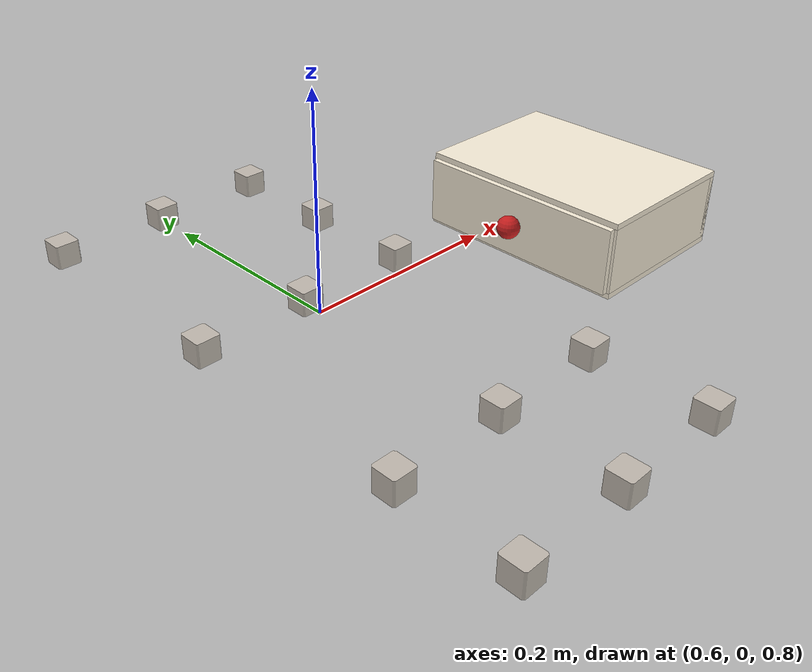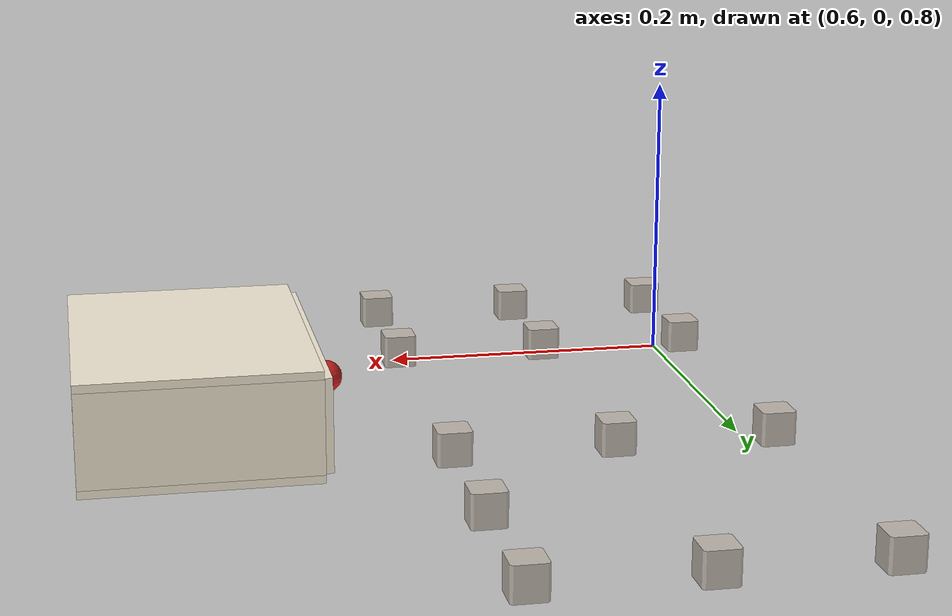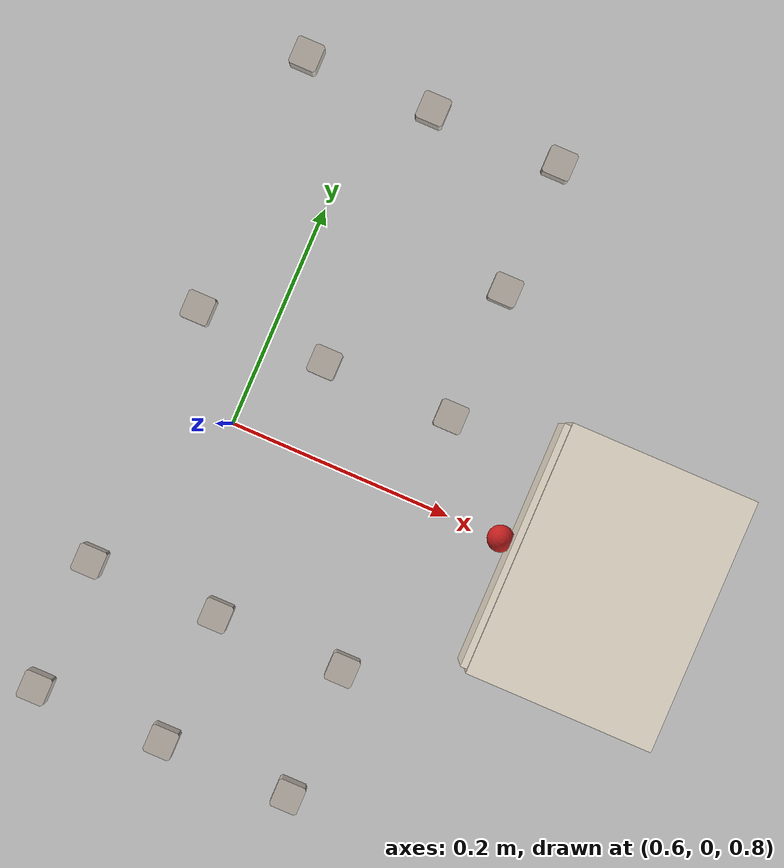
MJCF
<?xml version="1.0" encoding="utf-8"?>
<mujoco model="spell_and_stow_task">
  <compiler angle="radian" meshdir="../assets" texturedir="../assets" />
  <default>
    <default class="yam">
      <position inheritrange="1" />
      <joint frictionloss="0.1" axis="0 0 1" />
      <default class="dm4340">
        <joint armature="0.032" />
        <position kp="40" kv="2.5" forcerange="-28 28" />
      </default>
      <default class="dm4310">
        <joint armature="0.0018" />
        <position kp="10" kv="1" forcerange="-10 10" />
      </default>
      <default class="visual">
        <geom type="mesh" contype="0" conaffinity="0" density="0" group="2" material="black" />
      </default>
      <default class="collision">
        <geom group="3" type="capsule" friction="2.0 0.1 0.01" condim="4" />
        <default class="sphere_collision">
          <geom size="0.0006 0 0" type="sphere" rgba="1 0 0 1" friction="4.0 0.1 0.01" condim="4" solimp="0.998 0.998 0.001" solref="0.004 1" priority="2" />
        </default>
      </default>
      <default class="finger">
        <joint type="slide" armature="0.1" frictionloss="0.1" />
        <position ctrlrange="0.0 0.0495" kp="400" kv="14" inheritrange="0" />
      </default>
    </default>
    <default class="letter_block">
      <geom type="mesh" contype="0" conaffinity="0" density="0" group="1" />
    </default>
    <default class="letter_block_col">
      <geom type="box" size="0.0127 0.0127 0.0127" condim="4" friction="1.0 0.002 0.0002" solref="0.004 1" solimp="0.998 0.998 0.001" priority="1" mass="0.010" group="3" rgba="0 0 0 0" />
    </default>
    <default class="CMC_joint">
      <joint armature="0.0032" damping="4.20E-05" frictionloss="0.132" />
    </default>
    <default class="PCMC_joint">
      <joint armature="0.00012" damping="4.20E-05" frictionloss="0.012" />
    </default>
    <default class="MCP_joint">
      <joint armature="0.00265" damping="2.38E-05" frictionloss="0.07456" />
    </default>
    <default class="PIP_joint">
      <joint armature="0.0006" damping="4.06E-06" frictionloss="0.01276" />
    </default>
    <default class="DIP_joint">
      <joint armature="0.00042" damping="1.21E-06" frictionloss="0.00378738" />
    </default>
    <default class="elastomer_geom">
      <geom solref="0.004 1" friction="3.0 0.1 0.01" priority="2" condim="4" />
    </default>
    <default class="hand_bone">
      <geom friction="1.8 0.03 0.003" priority="2" condim="4" />
    </default>
  </default>
  <contact>
    <exclude body1="right_hand_C_MC" body2="right_thumb_CMC_VL" />
    <exclude body1="right_hand_C_MC" body2="right_hand_C_MC" />
    <exclude body1="right_hand_C_MC" body2="right_thumb_MC" />
    <exclude body1="right_thumb_MC" body2="right_thumb_MCP_VL" />
    <exclude body1="right_thumb_MC" body2="right_thumb_PP" />
    <exclude body1="right_thumb_MCP_VL" body2="right_thumb_PP" />
    <exclude body1="right_thumb_PP" body2="right_thumb_DP" />
    <exclude body1="right_hand_C_MC" body2="right_index_MCP_VL" />
    <exclude body1="right_hand_C_MC" body2="right_index_PP" />
    <exclude body1="right_index_MCP_VL" body2="right_index_PP" />
    <exclude body1="right_index_PP" body2="right_index_MP" />
    <exclude body1="right_index_MP" body2="right_index_DP" />
    <exclude body1="right_hand_C_MC" body2="right_middle_MCP_VL" />
    <exclude body1="right_hand_C_MC" body2="right_middle_PP" />
    <exclude body1="right_middle_MCP_VL" body2="right_middle_PP" />
    <exclude body1="right_middle_PP" body2="right_middle_MP" />
    <exclude body1="right_middle_MP" body2="right_middle_DP" />
    <exclude body1="right_hand_C_MC" body2="right_ring_MCP_VL" />
    <exclude body1="right_hand_C_MC" body2="right_ring_PP" />
    <exclude body1="right_ring_MCP_VL" body2="right_ring_PP" />
    <exclude body1="right_ring_PP" body2="right_ring_MP" />
    <exclude body1="right_ring_MP" body2="right_ring_DP" />
    <exclude body1="right_hand_C_MC" body2="right_pinky_MC" />
    <exclude body1="right_pinky_MC" body2="right_pinky_MCP_VL" />
    <exclude body1="right_pinky_MC" body2="right_pinky_PP" />
    <exclude body1="right_pinky_MCP_VL" body2="right_pinky_PP" />
    <exclude body1="right_pinky_PP" body2="right_pinky_MP" />
    <exclude body1="right_pinky_MP" body2="right_pinky_DP" />
    <exclude body1="left_hand_C_MC" body2="left_thumb_CMC_VL" />
    <exclude body1="left_hand_C_MC" body2="left_hand_C_MC" />
    <exclude body1="left_hand_C_MC" body2="left_thumb_MC" />
    <exclude body1="left_thumb_MC" body2="left_thumb_MCP_VL" />
    <exclude body1="left_thumb_MC" body2="left_thumb_PP" />
    <exclude body1="left_thumb_MCP_VL" body2="left_thumb_PP" />
    <exclude body1="left_thumb_PP" body2="left_thumb_DP" />
    <exclude body1="left_hand_C_MC" body2="left_index_MCP_VL" />
    <exclude body1="left_hand_C_MC" body2="left_index_PP" />
    <exclude body1="left_index_MCP_VL" body2="left_index_PP" />
    <exclude body1="left_index_PP" body2="left_index_MP" />
    <exclude body1="left_index_MP" body2="left_index_DP" />
    <exclude body1="left_hand_C_MC" body2="left_middle_MCP_VL" />
    <exclude body1="left_hand_C_MC" body2="left_middle_PP" />
    <exclude body1="left_middle_MCP_VL" body2="left_middle_PP" />
    <exclude body1="left_middle_PP" body2="left_middle_MP" />
    <exclude body1="left_middle_MP" body2="left_middle_DP" />
    <exclude body1="left_hand_C_MC" body2="left_ring_MCP_VL" />
    <exclude body1="left_hand_C_MC" body2="left_ring_PP" />
    <exclude body1="left_ring_MCP_VL" body2="left_ring_PP" />
    <exclude body1="left_ring_PP" body2="left_ring_MP" />
    <exclude body1="left_ring_MP" body2="left_ring_DP" />
    <exclude body1="left_hand_C_MC" body2="left_pinky_MC" />
    <exclude body1="left_pinky_MC" body2="left_pinky_MCP_VL" />
    <exclude body1="left_pinky_MC" body2="left_pinky_PP" />
    <exclude body1="left_pinky_MCP_VL" body2="left_pinky_PP" />
    <exclude body1="left_pinky_PP" body2="left_pinky_MP" />
    <exclude body1="left_pinky_MP" body2="left_pinky_DP" />
  </contact>
  <asset>
    <texture name="letter_block_tex" type="2d" file="blocks/texture.png" />
    <material name="letter_block_mat" texture="letter_block_tex" specular="0.3" shininess="0.3" />
    <!-- cream desk-organizer body -->
    <material name="robocasa-cabinet-dark" rgba="0.96 0.92 0.84 1" specular="0.20" shininess="0.15" />
    <!-- cream desk-organizer drawer face -->
    <material name="robocasa-cabinet-panel" rgba="0.96 0.92 0.84 1" specular="0.20" shininess="0.15" />
    <material name="robocasa-drawer-inside" rgba="0.34 0.31 0.28 1" specular="0.15" shininess="0.18" />
    <material name="robocasa-handle-metal" rgba="0.78 0.68 0.52 1" specular="0.75" shininess="0.65" />
    <!-- red sphere drawer knob -->
    <material name="drawer-knob-red" rgba="0.78 0.12 0.12 1" specular="0.55" shininess="0.45" />
    <mesh name="block_A" file="blocks/block_A.obj" scale="0.127 0.127 0.127" />
    <mesh name="block_C" file="blocks/block_C.obj" scale="0.127 0.127 0.127" />
    <mesh name="block_D" file="blocks/block_D.obj" scale="0.127 0.127 0.127" />
    <mesh name="block_E" file="blocks/block_E.obj" scale="0.127 0.127 0.127" />
    <mesh name="block_F" file="blocks/block_F.obj" scale="0.127 0.127 0.127" />
    <mesh name="block_G" file="blocks/block_G.obj" scale="0.127 0.127 0.127" />
    <mesh name="block_I" file="blocks/block_I.obj" scale="0.127 0.127 0.127" />
    <mesh name="block_M" file="blocks/block_M.obj" scale="0.127 0.127 0.127" />
    <mesh name="block_N" file="blocks/block_N.obj" scale="0.127 0.127 0.127" />
    <mesh name="block_O" file="blocks/block_O.obj" scale="0.127 0.127 0.127" />
    <mesh name="block_R" file="blocks/block_R.obj" scale="0.127 0.127 0.127" />
    <mesh name="block_S" file="blocks/block_S.obj" scale="0.127 0.127 0.127" />
    <mesh name="block_T" file="blocks/block_T.obj" scale="0.127 0.127 0.127" />
    <texture type="skybox" builtin="gradient" rgb1="1.0 1.0 1.0" rgb2="0.98 0.98 0.98" width="512" height="3072" />
  </asset>
  <worldbody>
    <!-- 1-drawer dresser: outer cabinet 23 x 17 x 8.1 cm. Generated by scripts/generate_drawer.py — regenerate, do not hand-edit. -->
    <body name="drawer_body" pos="0.95 0 0.75" quat="0.70711 0 0 -0.70711">
      <freejoint name="drawer_body_joint" />
      <inertial pos="0 0 0.0405" mass="2" diaginertia="0.00591017 0.00991017 0.0136333" />
      <geom material="robocasa-cabinet-dark" pos="0 0 0.003" size="0.115 0.085 0.003" type="box" group="2" mass="0" contype="0" conaffinity="0" />
      <geom pos="0 0 0.003" size="0.115 0.085 0.003" type="box" group="3" priority="1" friction="1.2 0.01 0.001" condim="4" rgba="0 0 0 0" mass="0" solref="0.004 1" solimp="0.998 0.998 0.001" />
      <geom material="robocasa-cabinet-dark" pos="0 0 0.078" size="0.115 0.085 0.003" type="box" group="2" mass="0" contype="0" conaffinity="0" />
      <geom pos="0 0 0.078" size="0.115 0.085 0.003" type="box" group="3" priority="1" friction="1.2 0.01 0.001" condim="4" rgba="0 0 0 0" mass="0" solref="0.004 1" solimp="0.998 0.998 0.001" />
      <geom material="robocasa-cabinet-dark" pos="0 0.082 0.0405" size="0.115 0.003 0.0345" type="box" group="2" mass="0" contype="0" conaffinity="0" />
      <geom pos="0 0.082 0.0405" size="0.115 0.003 0.0345" type="box" group="3" priority="1" friction="1.2 0.01 0.001" condim="4" rgba="0 0 0 0" mass="0" solref="0.004 1" solimp="0.998 0.998 0.001" />
      <geom material="robocasa-cabinet-dark" pos="-0.112 0 0.0405" size="0.003 0.085 0.0345" type="box" group="2" mass="0" contype="0" conaffinity="0" />
      <geom pos="-0.112 0 0.0405" size="0.003 0.085 0.0345" type="box" group="3" priority="1" friction="1.2 0.01 0.001" condim="4" rgba="0 0 0 0" mass="0" solref="0.004 1" solimp="0.998 0.998 0.001" />
      <geom material="robocasa-cabinet-dark" pos="0.112 0 0.0405" size="0.003 0.085 0.0345" type="box" group="2" mass="0" contype="0" conaffinity="0" />
      <geom pos="0.112 0 0.0405" size="0.003 0.085 0.0345" type="box" group="3" priority="1" friction="1.2 0.01 0.001" condim="4" rgba="0 0 0 0" mass="0" solref="0.004 1" solimp="0.998 0.998 0.001" />
      <body name="drawer-slide-d0" pos="0 0 0.0405">
        <inertial pos="0 0 0" mass="0.25" diaginertia="0.0012 0.0012 0.0012" />
        <joint type="slide" range="0 0.153" axis="0 -1 0" name="joint_d0_drawer" pos="0 0 0" damping="6.0" frictionloss="0.18" />
        <geom material="robocasa-drawer-inside" pos="0 0 -0.0285" size="0.106 0.076 0.003" type="box" group="2" mass="0" contype="0" conaffinity="0" />
        <geom pos="0 0 -0.0285" size="0.106 0.076 0.003" type="box" group="3" priority="1" friction="1.2 0.01 0.001" condim="4" rgba="0 0 0 0" mass="0" solref="0.004 1" solimp="0.998 0.998 0.001" />
        <geom material="robocasa-drawer-inside" pos="0 0.073 0" size="0.106 0.003 0.0315" type="box" group="2" mass="0" contype="0" conaffinity="0" />
        <geom pos="0 0.073 0" size="0.106 0.003 0.0315" type="box" group="3" priority="1" friction="1.2 0.01 0.001" condim="4" rgba="0 0 0 0" mass="0" solref="0.004 1" solimp="0.998 0.998 0.001" />
        <geom material="robocasa-drawer-inside" pos="-0.103 0 0" size="0.003 0.076 0.0315" type="box" group="2" mass="0" contype="0" conaffinity="0" />
        <geom pos="-0.103 0 0" size="0.003 0.076 0.0315" type="box" group="3" priority="1" friction="1.2 0.01 0.001" condim="4" rgba="0 0 0 0" mass="0" solref="0.004 1" solimp="0.998 0.998 0.001" />
        <geom material="robocasa-drawer-inside" pos="0.103 0 0" size="0.003 0.076 0.0315" type="box" group="2" mass="0" contype="0" conaffinity="0" />
        <geom pos="0.103 0 0" size="0.003 0.076 0.0315" type="box" group="3" priority="1" friction="1.2 0.01 0.001" condim="4" rgba="0 0 0 0" mass="0" solref="0.004 1" solimp="0.998 0.998 0.001" />
        <geom material="robocasa-cabinet-panel" pos="0 -0.088 0" size="0.112 0.003 0.0345" type="box" group="2" mass="0" contype="0" conaffinity="0" />
        <geom pos="0 -0.088 0" size="0.112 0.003 0.0345" type="box" group="3" priority="1" friction="1.2 0.01 0.001" condim="4" rgba="0 0 0 0" mass="0" solref="0.004 1" solimp="0.998 0.998 0.001" />
        <geom material="drawer-knob-red" pos="0 -0.1 0" size="0.012" type="sphere" group="2" mass="0" contype="0" conaffinity="0" />
        <geom pos="0 -0.1 0" size="0.012" type="sphere" group="3" priority="1" friction="1.2 0.01 0.001" condim="4" rgba="0 0 0 0" mass="0" solref="0.004 1" solimp="0.998 0.998 0.001" />
      </body>
    </body>
    <body name="block_A" pos="0.650 0.320 0.760" quat="0.707 0 0.707 0">
      <freejoint name="block_A_jnt" />
      <geom name="block_A_vis" mesh="block_A" material="letter_block_mat" class="letter_block" />
      <geom name="block_A_col" class="letter_block_col" />
    </body>
    <body name="block_C" pos="0.650 0.080 0.760" quat="0.707 0 0.707 0">
      <freejoint name="block_C_jnt" />
      <geom name="block_C_vis" mesh="block_C" material="letter_block_mat" class="letter_block" />
      <geom name="block_C_col" class="letter_block_col" />
    </body>
    <body name="block_D" pos="0.770 0.320 0.760" quat="0.707 0 0.707 0">
      <freejoint name="block_D_jnt" />
      <geom name="block_D_vis" mesh="block_D" material="letter_block_mat" class="letter_block" />
      <geom name="block_D_col" class="letter_block_col" />
    </body>
    <body name="block_E" pos="0.770 0.200 0.760" quat="0.707 0 0.707 0">
      <freejoint name="block_E_jnt" />
      <geom name="block_E_vis" mesh="block_E" material="letter_block_mat" class="letter_block" />
      <geom name="block_E_col" class="letter_block_col" />
    </body>
    <body name="block_F" pos="0.770 0.080 0.760" quat="0.707 0 0.707 0">
      <freejoint name="block_F_jnt" />
      <geom name="block_F_vis" mesh="block_F" material="letter_block_mat" class="letter_block" />
      <geom name="block_F_col" class="letter_block_col" />
    </body>
    <body name="block_G" pos="0.530 0.320 0.760" quat="0.707 0 0.707 0">
      <freejoint name="block_G_jnt" />
      <geom name="block_G_vis" mesh="block_G" material="letter_block_mat" class="letter_block" />
      <geom name="block_G_col" class="letter_block_col" />
    </body>
    <body name="block_I" pos="0.530 0.080 0.760" quat="0.707 0 0.707 0">
      <freejoint name="block_I_jnt" />
      <geom name="block_I_vis" mesh="block_I" material="letter_block_mat" class="letter_block" />
      <geom name="block_I_col" class="letter_block_col" />
    </body>
    <body name="block_M" pos="0.650 -0.160 0.760" quat="0.707 0 0.707 0">
      <freejoint name="block_M_jnt" />
      <geom name="block_M_vis" mesh="block_M" material="letter_block_mat" class="letter_block" />
      <geom name="block_M_col" class="letter_block_col" />
    </body>
    <body name="block_N" pos="0.770 -0.160 0.760" quat="0.707 0 0.707 0">
      <freejoint name="block_N_jnt" />
      <geom name="block_N_vis" mesh="block_N" material="letter_block_mat" class="letter_block" />
      <geom name="block_N_col" class="letter_block_col" />
    </body>
    <body name="block_O" pos="0.530 -0.160 0.760" quat="0.707 0 0.707 0">
      <freejoint name="block_O_jnt" />
      <geom name="block_O_vis" mesh="block_O" material="letter_block_mat" class="letter_block" />
      <geom name="block_O_col" class="letter_block_col" />
    </body>
    <body name="block_R" pos="0.650 -0.280 0.760" quat="0.707 0 0.707 0">
      <freejoint name="block_R_jnt" />
      <geom name="block_R_vis" mesh="block_R" material="letter_block_mat" class="letter_block" />
      <geom name="block_R_col" class="letter_block_col" />
    </body>
    <body name="block_S" pos="0.770 -0.280 0.760" quat="0.707 0 0.707 0">
      <freejoint name="block_S_jnt" />
      <geom name="block_S_vis" mesh="block_S" material="letter_block_mat" class="letter_block" />
      <geom name="block_S_col" class="letter_block_col" />
    </body>
    <body name="block_T" pos="0.530 -0.280 0.760" quat="0.707 0 0.707 0">
      <freejoint name="block_T_jnt" />
      <geom name="block_T_vis" mesh="block_T" material="letter_block_mat" class="letter_block" />
      <geom name="block_T_col" class="letter_block_col" />
    </body>
  </worldbody>
</mujoco>
